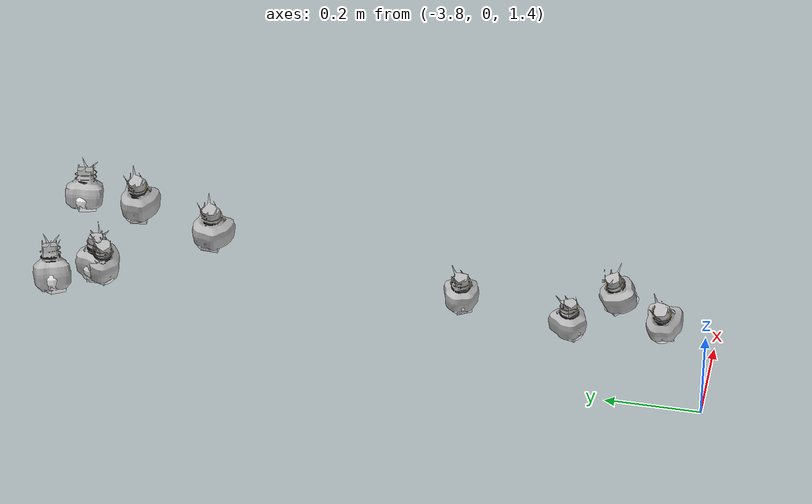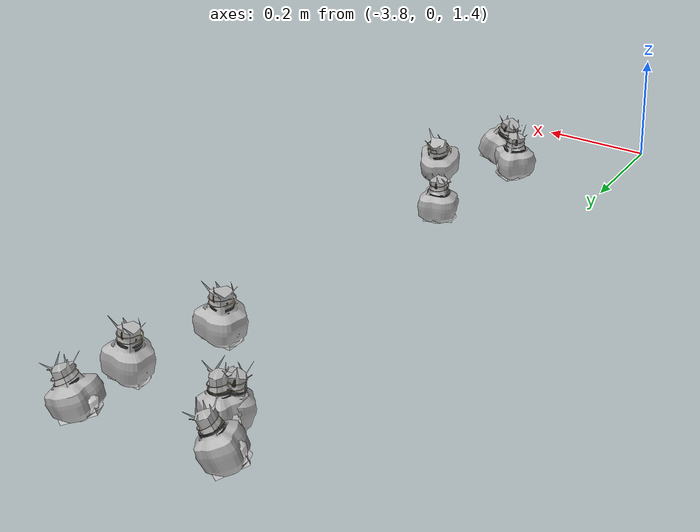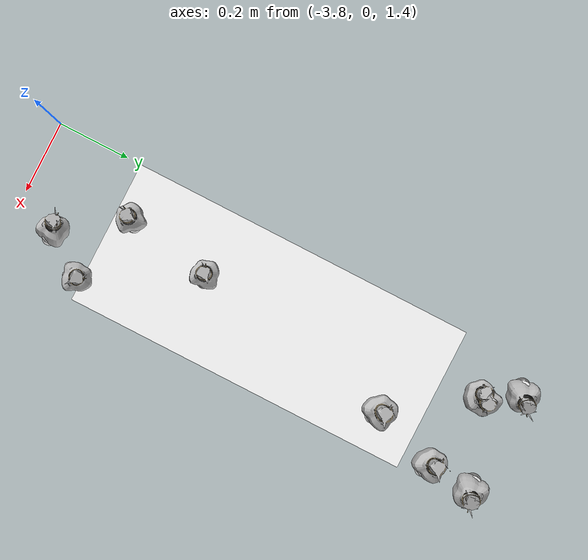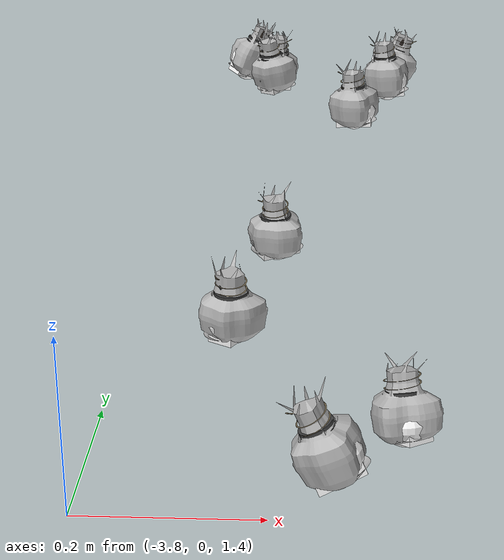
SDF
<sdf version="1.11">
 <world name="peach_orchard">
  <model name="ground">
   <static>true</static>
   <link name="link">
    <visual name="soil">
     <geometry><plane><normal>0 0 1</normal><size>32 22</size></plane></geometry>
     <material>
      <ambient>1 1 1 1</ambient>
      <diffuse>1 1 1 1</diffuse>
      <specular>0.1 0.1 0.1 1</specular>
      <pbr>
       <metal>
        <albedo_map>textures/soil_albedo.png</albedo_map>
        <normal_map type="tangent">textures/soil_normal.png</normal_map>
        <roughness>0.95</roughness>
        <metalness>0</metalness>
       </metal>
      </pbr>
     </material>
    </visual>
    <collision name="c_soil">
     <geometry><plane><normal>0 0 1</normal><size>32 22</size></plane></geometry>
    </collision>
   </link>
  </model>
  <model name="peach_tree_r1_t3_04">
   <pose>-3.65967 0.298951 1.44628 0 0.00556557 -2.42934</pose>
   <static>true</static>
   <link name="bag">
    <visual name="bag_mesh">
     <pose>0 0 0.0416671 0 0 -0</pose>
     <geometry>
      <mesh><uri>model://peach_sim/meshes/bagged_peach.glb</uri><scale>0.922563 1.07125 0.946979</scale></mesh>
     </geometry>
    </visual>
    <visual name="body">
     <pose>0 0 0.0236671 0 0 0</pose>
     <geometry><ellipsoid><radii>0.0345961 0.0278525 0.0255605</radii></ellipsoid></geometry>
     <material>
      <ambient>1 1 1 1</ambient>
      <diffuse>1 1 1 1</diffuse>
      <specular>0.1 0.1 0.1 1</specular>
      <pbr>
       <metal>
        <albedo_map>textures/paper_bag_albedo.png</albedo_map>
        <normal_map type="tangent">textures/paper_bag_normal.png</normal_map>
        <roughness>0.72</roughness>
        <metalness>0</metalness>
       </metal>
      </pbr>
     </material>
    </visual>
    <visual name="bottom_fold">
     <pose>0 0 0.012 0 0 0.35</pose>
     <geometry><box><size>0.053624 0.0320303 0.022</size></box></geometry>
     <material>
      <ambient>1 1 1 1</ambient>
      <diffuse>1 1 1 1</diffuse>
      <specular>0.1 0.1 0.1 1</specular>
      <pbr>
       <metal>
        <albedo_map>textures/paper_bag_albedo.png</albedo_map>
        <normal_map type="tangent">textures/paper_bag_normal.png</normal_map>
        <roughness>0.8</roughness>
        <metalness>0</metalness>
       </metal>
      </pbr>
     </material>
    </visual>
    <visual name="fruit">
     <pose>0 0 0.0206718 0 0 0</pose>
     <geometry><sphere><radius>0.0277386</radius></sphere></geometry>
     <material>
      <ambient>1 1 1 1</ambient>
      <diffuse>1 1 1 1</diffuse>
      <specular>0.1 0.1 0.1 1</specular>
      <pbr>
       <metal>
        <albedo_map>textures/fruit_skin_albedo.png</albedo_map>
        <normal_map type="tangent">textures/fruit_skin_normal.png</normal_map>
        <roughness>0.55</roughness>
        <metalness>0</metalness>
       </metal>
      </pbr>
     </material>
    </visual>
    <visual name="neck">
     <pose>0 0 0.0563342 0 0 0</pose>
     <geometry><cylinder><radius>0.013</radius><length>0.018</length></cylinder></geometry>
     <material>
      <ambient>1 1 1 1</ambient>
      <diffuse>1 1 1 1</diffuse>
      <specular>0.1 0.1 0.1 1</specular>
      <pbr>
       <metal>
        <albedo_map>textures/paper_bag_albedo.png</albedo_map>
        <normal_map type="tangent">textures/paper_bag_normal.png</normal_map>
        <roughness>0.75</roughness>
        <metalness>0</metalness>
       </metal>
      </pbr>
     </material>
    </visual>
    <visual name="gather">
     <pose>0 0 0.0373342 0 0 0</pose>
     <geometry><cylinder><radius>0.019</radius><length>0.02</length></cylinder></geometry>
     <material>
      <ambient>1 1 1 1</ambient>
      <diffuse>1 1 1 1</diffuse>
      <specular>0.1 0.1 0.1 1</specular>
      <pbr>
       <metal>
        <albedo_map>textures/paper_bag_albedo.png</albedo_map>
        <normal_map type="tangent">textures/paper_bag_normal.png</normal_map>
        <roughness>0.8</roughness>
        <metalness>0</metalness>
       </metal>
      </pbr>
     </material>
    </visual>
    <visual name="inner_paper">
     <pose>0 0 0.0613342 0 0 0</pose>
     <geometry><cylinder><radius>0.01</radius><length>0.008</length></cylinder></geometry>
     <material>
      <ambient>0.180392 0.14902 0.133333 1</ambient>
      <diffuse>0.180392 0.14902 0.133333 1</diffuse>
      <specular>0.1 0.1 0.1 1</specular>
     </material>
    </visual>
    <visual name="wire_0">
     <pose>0 0 0.0513342 0 0 0</pose>
     <geometry><cylinder><radius>0.0205</radius><length>0.0035</length></cylinder></geometry>
     <material>
      <ambient>0.25 0.25 0.25 1</ambient>
      <diffuse>0.25 0.25 0.25 1</diffuse>
      <specular>0.1 0.1 0.1 1</specular>
     </material>
    </visual>
    <visual name="wire_1">
     <pose>0 0 0.0583342 0 0 0</pose>
     <geometry><cylinder><radius>0.0205</radius><length>0.0035</length></cylinder></geometry>
     <material>
      <ambient>0.25 0.25 0.25 1</ambient>
      <diffuse>0.25 0.25 0.25 1</diffuse>
      <specular>0.1 0.1 0.1 1</specular>
     </material>
    </visual>
    <visual name="wire_tail">
     <pose>0.01 0 0.0593342 0 0.521618 0</pose>
     <geometry><cylinder><radius>0.0012</radius><length>0.026</length></cylinder></geometry>
     <material>
      <ambient>0.25 0.25 0.25 1</ambient>
      <diffuse>0.25 0.25 0.25 1</diffuse>
      <specular>0.1 0.1 0.1 1</specular>
     </material>
    </visual>
    <collision name="c_body">
     <pose>0 0 0.0236671 0 0 0</pose>
     <geometry><cylinder><radius>0.0345961</radius><length>0.0473342</length></cylinder></geometry>
    </collision>
   </link>
  </model>
  <model name="peach_tree_r1_t3_05">
   <pose>-3.61823 0.532756 1.45 0 0.0347315 -3.0111</pose>
   <static>true</static>
   <link name="bag">
    <visual name="bag_mesh">
     <pose>0 0 0.0400003 0 0 -0</pose>
     <geometry>
      <mesh><uri>model://peach_sim/meshes/bagged_peach.glb</uri><scale>0.907463 1.06817 0.909097</scale></mesh>
     </geometry>
    </visual>
    <visual name="body">
     <pose>0 0 0.0220003 0 0 0</pose>
     <geometry><ellipsoid><radii>0.0340299 0.0277723 0.0237603</radii></ellipsoid></geometry>
     <material>
      <ambient>1 1 1 1</ambient>
      <diffuse>1 1 1 1</diffuse>
      <specular>0.1 0.1 0.1 1</specular>
      <pbr>
       <metal>
        <albedo_map>textures/paper_bag_albedo.png</albedo_map>
        <normal_map type="tangent">textures/paper_bag_normal.png</normal_map>
        <roughness>0.72</roughness>
        <metalness>0</metalness>
       </metal>
      </pbr>
     </material>
    </visual>
    <visual name="bottom_fold">
     <pose>0 0 0.012 0 0 0.35</pose>
     <geometry><box><size>0.0527463 0.0319382 0.022</size></box></geometry>
     <material>
      <ambient>1 1 1 1</ambient>
      <diffuse>1 1 1 1</diffuse>
      <specular>0.1 0.1 0.1 1</specular>
      <pbr>
       <metal>
        <albedo_map>textures/paper_bag_albedo.png</albedo_map>
        <normal_map type="tangent">textures/paper_bag_normal.png</normal_map>
        <roughness>0.8</roughness>
        <metalness>0</metalness>
       </metal>
      </pbr>
     </material>
    </visual>
    <visual name="fruit">
     <pose>0 0 0.0208591 0 0 0</pose>
     <geometry><sphere><radius>0.0279335</radius></sphere></geometry>
     <material>
      <ambient>1 1 1 1</ambient>
      <diffuse>1 1 1 1</diffuse>
      <specular>0.1 0.1 0.1 1</specular>
      <pbr>
       <metal>
        <albedo_map>textures/fruit_skin_albedo.png</albedo_map>
        <normal_map type="tangent">textures/fruit_skin_normal.png</normal_map>
        <roughness>0.55</roughness>
        <metalness>0</metalness>
       </metal>
      </pbr>
     </material>
    </visual>
    <visual name="neck">
     <pose>0 0 0.0530005 0 0 0</pose>
     <geometry><cylinder><radius>0.013</radius><length>0.018</length></cylinder></geometry>
     <material>
      <ambient>1 1 1 1</ambient>
      <diffuse>1 1 1 1</diffuse>
      <specular>0.1 0.1 0.1 1</specular>
      <pbr>
       <metal>
        <albedo_map>textures/paper_bag_albedo.png</albedo_map>
        <normal_map type="tangent">textures/paper_bag_normal.png</normal_map>
        <roughness>0.75</roughness>
        <metalness>0</metalness>
       </metal>
      </pbr>
     </material>
    </visual>
    <visual name="gather">
     <pose>0 0 0.0340005 0 0 0</pose>
     <geometry><cylinder><radius>0.019</radius><length>0.02</length></cylinder></geometry>
     <material>
      <ambient>1 1 1 1</ambient>
      <diffuse>1 1 1 1</diffuse>
      <specular>0.1 0.1 0.1 1</specular>
      <pbr>
       <metal>
        <albedo_map>textures/paper_bag_albedo.png</albedo_map>
        <normal_map type="tangent">textures/paper_bag_normal.png</normal_map>
        <roughness>0.8</roughness>
        <metalness>0</metalness>
       </metal>
      </pbr>
     </material>
    </visual>
    <visual name="inner_paper">
     <pose>0 0 0.0580005 0 0 0</pose>
     <geometry><cylinder><radius>0.01</radius><length>0.008</length></cylinder></geometry>
     <material>
      <ambient>0.180392 0.14902 0.133333 1</ambient>
      <diffuse>0.180392 0.14902 0.133333 1</diffuse>
      <specular>0.1 0.1 0.1 1</specular>
     </material>
    </visual>
    <visual name="wire_0">
     <pose>0 0 0.0480005 0 0 0</pose>
     <geometry><cylinder><radius>0.0205</radius><length>0.0035</length></cylinder></geometry>
     <material>
      <ambient>0.25 0.25 0.25 1</ambient>
      <diffuse>0.25 0.25 0.25 1</diffuse>
      <specular>0.1 0.1 0.1 1</specular>
     </material>
    </visual>
    <visual name="wire_1">
     <pose>0 0 0.0550005 0 0 0</pose>
     <geometry><cylinder><radius>0.0205</radius><length>0.0035</length></cylinder></geometry>
     <material>
      <ambient>0.25 0.25 0.25 1</ambient>
      <diffuse>0.25 0.25 0.25 1</diffuse>
      <specular>0.1 0.1 0.1 1</specular>
     </material>
    </visual>
    <visual name="wire_tail">
     <pose>0.01 0 0.0560005 0 0.521618 0</pose>
     <geometry><cylinder><radius>0.0012</radius><length>0.026</length></cylinder></geometry>
     <material>
      <ambient>0.25 0.25 0.25 1</ambient>
      <diffuse>0.25 0.25 0.25 1</diffuse>
      <specular>0.1 0.1 0.1 1</specular>
     </material>
    </visual>
    <collision name="c_body">
     <pose>0 0 0.0220003 0 0 0</pose>
     <geometry><cylinder><radius>0.0340299</radius><length>0.0440005</length></cylinder></geometry>
    </collision>
   </link>
  </model>
  <model name="peach_tree_r1_t3_07">
   <pose>-3.52723 0.112468 1.37372 0 0.419822 2.98983</pose>
   <static>true</static>
   <link name="bag">
    <visual name="bag_mesh">
     <pose>0 0 0.0475105 0 0 0</pose>
     <geometry>
      <mesh><uri>model://peach_sim/meshes/bagged_peach.glb</uri><scale>0.984001 1.12536 1.07979</scale></mesh>
     </geometry>
    </visual>
    <visual name="body">
     <pose>0 0 0.0295105 0 0 0</pose>
     <geometry><ellipsoid><radii>0.0369 0.0292594 0.0318714</radii></ellipsoid></geometry>
     <material>
      <ambient>1 1 1 1</ambient>
      <diffuse>1 1 1 1</diffuse>
      <specular>0.1 0.1 0.1 1</specular>
      <pbr>
       <metal>
        <albedo_map>textures/paper_bag_albedo.png</albedo_map>
        <normal_map type="tangent">textures/paper_bag_normal.png</normal_map>
        <roughness>0.72</roughness>
        <metalness>0</metalness>
       </metal>
      </pbr>
     </material>
    </visual>
    <visual name="bottom_fold">
     <pose>0 0 0.012 0 0 0.35</pose>
     <geometry><box><size>0.0571951 0.0336483 0.022</size></box></geometry>
     <material>
      <ambient>1 1 1 1</ambient>
      <diffuse>1 1 1 1</diffuse>
      <specular>0.1 0.1 0.1 1</specular>
      <pbr>
       <metal>
        <albedo_map>textures/paper_bag_albedo.png</albedo_map>
        <normal_map type="tangent">textures/paper_bag_normal.png</normal_map>
        <roughness>0.8</roughness>
        <metalness>0</metalness>
       </metal>
      </pbr>
     </material>
    </visual>
    <visual name="fruit">
     <pose>0 0 0.0217443 0 0 0</pose>
     <geometry><sphere><radius>0.0288541</radius></sphere></geometry>
     <material>
      <ambient>1 1 1 1</ambient>
      <diffuse>1 1 1 1</diffuse>
      <specular>0.1 0.1 0.1 1</specular>
      <pbr>
       <metal>
        <albedo_map>textures/fruit_skin_albedo.png</albedo_map>
        <normal_map type="tangent">textures/fruit_skin_normal.png</normal_map>
        <roughness>0.55</roughness>
        <metalness>0</metalness>
       </metal>
      </pbr>
     </material>
    </visual>
    <visual name="neck">
     <pose>0 0 0.0680211 0 0 0</pose>
     <geometry><cylinder><radius>0.013</radius><length>0.018</length></cylinder></geometry>
     <material>
      <ambient>1 1 1 1</ambient>
      <diffuse>1 1 1 1</diffuse>
      <specular>0.1 0.1 0.1 1</specular>
      <pbr>
       <metal>
        <albedo_map>textures/paper_bag_albedo.png</albedo_map>
        <normal_map type="tangent">textures/paper_bag_normal.png</normal_map>
        <roughness>0.75</roughness>
        <metalness>0</metalness>
       </metal>
      </pbr>
     </material>
    </visual>
    <visual name="gather">
     <pose>0 0 0.0490211 0 0 0</pose>
     <geometry><cylinder><radius>0.019</radius><length>0.02</length></cylinder></geometry>
     <material>
      <ambient>1 1 1 1</ambient>
      <diffuse>1 1 1 1</diffuse>
      <specular>0.1 0.1 0.1 1</specular>
      <pbr>
       <metal>
        <albedo_map>textures/paper_bag_albedo.png</albedo_map>
        <normal_map type="tangent">textures/paper_bag_normal.png</normal_map>
        <roughness>0.8</roughness>
        <metalness>0</metalness>
       </metal>
      </pbr>
     </material>
    </visual>
    <visual name="inner_paper">
     <pose>0 0 0.0730211 0 0 0</pose>
     <geometry><cylinder><radius>0.01</radius><length>0.008</length></cylinder></geometry>
     <material>
      <ambient>0.180392 0.14902 0.133333 1</ambient>
      <diffuse>0.180392 0.14902 0.133333 1</diffuse>
      <specular>0.1 0.1 0.1 1</specular>
     </material>
    </visual>
    <visual name="wire_0">
     <pose>0 0 0.0630211 0 0 0</pose>
     <geometry><cylinder><radius>0.0205</radius><length>0.0035</length></cylinder></geometry>
     <material>
      <ambient>0.25 0.25 0.25 1</ambient>
      <diffuse>0.25 0.25 0.25 1</diffuse>
      <specular>0.1 0.1 0.1 1</specular>
     </material>
    </visual>
    <visual name="wire_1">
     <pose>0 0 0.0700211 0 0 0</pose>
     <geometry><cylinder><radius>0.0205</radius><length>0.0035</length></cylinder></geometry>
     <material>
      <ambient>0.25 0.25 0.25 1</ambient>
      <diffuse>0.25 0.25 0.25 1</diffuse>
      <specular>0.1 0.1 0.1 1</specular>
     </material>
    </visual>
    <visual name="wire_tail">
     <pose>0.01 0 0.0710211 0 0.521618 0</pose>
     <geometry><cylinder><radius>0.0012</radius><length>0.026</length></cylinder></geometry>
     <material>
      <ambient>0.25 0.25 0.25 1</ambient>
      <diffuse>0.25 0.25 0.25 1</diffuse>
      <specular>0.1 0.1 0.1 1</specular>
     </material>
    </visual>
    <collision name="c_body">
     <pose>0 0 0.0295105 0 0 0</pose>
     <geometry><cylinder><radius>0.0369</radius><length>0.0590211</length></cylinder></geometry>
    </collision>
   </link>
  </model>
  <model name="peach_tree_r1_t3_08">
   <pose>-3.45392 0.212947 1.36133 0 0.279681 1.85846</pose>
   <static>true</static>
   <link name="bag">
    <visual name="bag_mesh">
     <pose>0 0 0.0415146 0 0 0</pose>
     <geometry>
      <mesh><uri>model://peach_sim/meshes/bagged_peach.glb</uri><scale>0.979915 1.15327 0.943514</scale></mesh>
     </geometry>
    </visual>
    <visual name="body">
     <pose>0 0 0.0235146 0 0 0</pose>
     <geometry><ellipsoid><radii>0.0367468 0.029985 0.0253958</radii></ellipsoid></geometry>
     <material>
      <ambient>1 1 1 1</ambient>
      <diffuse>1 1 1 1</diffuse>
      <specular>0.1 0.1 0.1 1</specular>
      <pbr>
       <metal>
        <albedo_map>textures/paper_bag_albedo.png</albedo_map>
        <normal_map type="tangent">textures/paper_bag_normal.png</normal_map>
        <roughness>0.72</roughness>
        <metalness>0</metalness>
       </metal>
      </pbr>
     </material>
    </visual>
    <visual name="bottom_fold">
     <pose>0 0 0.012 0 0 0.35</pose>
     <geometry><box><size>0.0569576 0.0344827 0.022</size></box></geometry>
     <material>
      <ambient>1 1 1 1</ambient>
      <diffuse>1 1 1 1</diffuse>
      <specular>0.1 0.1 0.1 1</specular>
      <pbr>
       <metal>
        <albedo_map>textures/paper_bag_albedo.png</albedo_map>
        <normal_map type="tangent">textures/paper_bag_normal.png</normal_map>
        <roughness>0.8</roughness>
        <metalness>0</metalness>
       </metal>
      </pbr>
     </material>
    </visual>
    <visual name="fruit">
     <pose>0 0 0.0202301 0 0 0</pose>
     <geometry><sphere><radius>0.0272793</radius></sphere></geometry>
     <material>
      <ambient>1 1 1 1</ambient>
      <diffuse>1 1 1 1</diffuse>
      <specular>0.1 0.1 0.1 1</specular>
      <pbr>
       <metal>
        <albedo_map>textures/fruit_skin_albedo.png</albedo_map>
        <normal_map type="tangent">textures/fruit_skin_normal.png</normal_map>
        <roughness>0.55</roughness>
        <metalness>0</metalness>
       </metal>
      </pbr>
     </material>
    </visual>
    <visual name="neck">
     <pose>0 0 0.0560292 0 0 0</pose>
     <geometry><cylinder><radius>0.013</radius><length>0.018</length></cylinder></geometry>
     <material>
      <ambient>1 1 1 1</ambient>
      <diffuse>1 1 1 1</diffuse>
      <specular>0.1 0.1 0.1 1</specular>
      <pbr>
       <metal>
        <albedo_map>textures/paper_bag_albedo.png</albedo_map>
        <normal_map type="tangent">textures/paper_bag_normal.png</normal_map>
        <roughness>0.75</roughness>
        <metalness>0</metalness>
       </metal>
      </pbr>
     </material>
    </visual>
    <visual name="gather">
     <pose>0 0 0.0370292 0 0 0</pose>
     <geometry><cylinder><radius>0.019</radius><length>0.02</length></cylinder></geometry>
     <material>
      <ambient>1 1 1 1</ambient>
      <diffuse>1 1 1 1</diffuse>
      <specular>0.1 0.1 0.1 1</specular>
      <pbr>
       <metal>
        <albedo_map>textures/paper_bag_albedo.png</albedo_map>
        <normal_map type="tangent">textures/paper_bag_normal.png</normal_map>
        <roughness>0.8</roughness>
        <metalness>0</metalness>
       </metal>
      </pbr>
     </material>
    </visual>
    <visual name="inner_paper">
     <pose>0 0 0.0610292 0 0 0</pose>
     <geometry><cylinder><radius>0.01</radius><length>0.008</length></cylinder></geometry>
     <material>
      <ambient>0.180392 0.14902 0.133333 1</ambient>
      <diffuse>0.180392 0.14902 0.133333 1</diffuse>
      <specular>0.1 0.1 0.1 1</specular>
     </material>
    </visual>
    <visual name="wire_0">
     <pose>0 0 0.0510292 0 0 0</pose>
     <geometry><cylinder><radius>0.0205</radius><length>0.0035</length></cylinder></geometry>
     <material>
      <ambient>0.25 0.25 0.25 1</ambient>
      <diffuse>0.25 0.25 0.25 1</diffuse>
      <specular>0.1 0.1 0.1 1</specular>
     </material>
    </visual>
    <visual name="wire_1">
     <pose>0 0 0.0580292 0 0 0</pose>
     <geometry><cylinder><radius>0.0205</radius><length>0.0035</length></cylinder></geometry>
     <material>
      <ambient>0.25 0.25 0.25 1</ambient>
      <diffuse>0.25 0.25 0.25 1</diffuse>
      <specular>0.1 0.1 0.1 1</specular>
     </material>
    </visual>
    <visual name="wire_tail">
     <pose>0.01 0 0.0590292 0 0.521618 0</pose>
     <geometry><cylinder><radius>0.0012</radius><length>0.026</length></cylinder></geometry>
     <material>
      <ambient>0.25 0.25 0.25 1</ambient>
      <diffuse>0.25 0.25 0.25 1</diffuse>
      <specular>0.1 0.1 0.1 1</specular>
     </material>
    </visual>
    <collision name="c_body">
     <pose>0 0 0.0235146 0 0 0</pose>
     <geometry><cylinder><radius>0.0367468</radius><length>0.0470292</length></cylinder></geometry>
    </collision>
   </link>
  </model>
  <model name="peach_tree_r1_t4_02">
   <pose>-3.72819 1.37983 1.45 0 0.4128 0.328277</pose>
   <static>true</static>
   <link name="bag">
    <visual name="bag_mesh">
     <pose>0 0 0.0495744 0 0 0</pose>
     <geometry>
      <mesh><uri>model://peach_sim/meshes/bagged_peach.glb</uri><scale>0.981769 1.14066 1.12669</scale></mesh>
     </geometry>
    </visual>
    <visual name="body">
     <pose>0 0 0.0315744 0 0 0</pose>
     <geometry><ellipsoid><radii>0.0368163 0.0296571 0.0341004</radii></ellipsoid></geometry>
     <material>
      <ambient>1 1 1 1</ambient>
      <diffuse>1 1 1 1</diffuse>
      <specular>0.1 0.1 0.1 1</specular>
      <pbr>
       <metal>
        <albedo_map>textures/paper_bag_albedo.png</albedo_map>
        <normal_map type="tangent">textures/paper_bag_normal.png</normal_map>
        <roughness>0.72</roughness>
        <metalness>0</metalness>
       </metal>
      </pbr>
     </material>
    </visual>
    <visual name="bottom_fold">
     <pose>0 0 0.012 0 0 0.35</pose>
     <geometry><box><size>0.0570653 0.0341056 0.022</size></box></geometry>
     <material>
      <ambient>1 1 1 1</ambient>
      <diffuse>1 1 1 1</diffuse>
      <specular>0.1 0.1 0.1 1</specular>
      <pbr>
       <metal>
        <albedo_map>textures/paper_bag_albedo.png</albedo_map>
        <normal_map type="tangent">textures/paper_bag_normal.png</normal_map>
        <roughness>0.8</roughness>
        <metalness>0</metalness>
       </metal>
      </pbr>
     </material>
    </visual>
    <visual name="fruit">
     <pose>0 0 0.0177051 0 0 0</pose>
     <geometry><sphere><radius>0.0246533</radius></sphere></geometry>
     <material>
      <ambient>1 1 1 1</ambient>
      <diffuse>1 1 1 1</diffuse>
      <specular>0.1 0.1 0.1 1</specular>
      <pbr>
       <metal>
        <albedo_map>textures/fruit_skin_albedo.png</albedo_map>
        <normal_map type="tangent">textures/fruit_skin_normal.png</normal_map>
        <roughness>0.55</roughness>
        <metalness>0</metalness>
       </metal>
      </pbr>
     </material>
    </visual>
    <visual name="neck">
     <pose>0 0 0.0721488 0 0 0</pose>
     <geometry><cylinder><radius>0.013</radius><length>0.018</length></cylinder></geometry>
     <material>
      <ambient>1 1 1 1</ambient>
      <diffuse>1 1 1 1</diffuse>
      <specular>0.1 0.1 0.1 1</specular>
      <pbr>
       <metal>
        <albedo_map>textures/paper_bag_albedo.png</albedo_map>
        <normal_map type="tangent">textures/paper_bag_normal.png</normal_map>
        <roughness>0.75</roughness>
        <metalness>0</metalness>
       </metal>
      </pbr>
     </material>
    </visual>
    <visual name="gather">
     <pose>0 0 0.0531488 0 0 0</pose>
     <geometry><cylinder><radius>0.019</radius><length>0.02</length></cylinder></geometry>
     <material>
      <ambient>1 1 1 1</ambient>
      <diffuse>1 1 1 1</diffuse>
      <specular>0.1 0.1 0.1 1</specular>
      <pbr>
       <metal>
        <albedo_map>textures/paper_bag_albedo.png</albedo_map>
        <normal_map type="tangent">textures/paper_bag_normal.png</normal_map>
        <roughness>0.8</roughness>
        <metalness>0</metalness>
       </metal>
      </pbr>
     </material>
    </visual>
    <visual name="inner_paper">
     <pose>0 0 0.0771488 0 0 0</pose>
     <geometry><cylinder><radius>0.01</radius><length>0.008</length></cylinder></geometry>
     <material>
      <ambient>0.180392 0.14902 0.133333 1</ambient>
      <diffuse>0.180392 0.14902 0.133333 1</diffuse>
      <specular>0.1 0.1 0.1 1</specular>
     </material>
    </visual>
    <visual name="wire_0">
     <pose>0 0 0.0671488 0 0 0</pose>
     <geometry><cylinder><radius>0.0205</radius><length>0.0035</length></cylinder></geometry>
     <material>
      <ambient>0.25 0.25 0.25 1</ambient>
      <diffuse>0.25 0.25 0.25 1</diffuse>
      <specular>0.1 0.1 0.1 1</specular>
     </material>
    </visual>
    <visual name="wire_1">
     <pose>0 0 0.0741488 0 0 0</pose>
     <geometry><cylinder><radius>0.0205</radius><length>0.0035</length></cylinder></geometry>
     <material>
      <ambient>0.25 0.25 0.25 1</ambient>
      <diffuse>0.25 0.25 0.25 1</diffuse>
      <specular>0.1 0.1 0.1 1</specular>
     </material>
    </visual>
    <visual name="wire_tail">
     <pose>0.01 0 0.0751488 0 0.521618 0</pose>
     <geometry><cylinder><radius>0.0012</radius><length>0.026</length></cylinder></geometry>
     <material>
      <ambient>0.25 0.25 0.25 1</ambient>
      <diffuse>0.25 0.25 0.25 1</diffuse>
      <specular>0.1 0.1 0.1 1</specular>
     </material>
    </visual>
    <collision name="c_body">
     <pose>0 0 0.0315744 0 0 0</pose>
     <geometry><cylinder><radius>0.0368163</radius><length>0.0631488</length></cylinder></geometry>
    </collision>
   </link>
  </model>
  <model name="peach_tree_r1_t4_03">
   <pose>-3.66264 1.30208 1.45 0 0.0798727 -0.298955</pose>
   <static>true</static>
   <link name="bag">
    <visual name="bag_mesh">
     <pose>0 0 0.0489154 0 0 -0</pose>
     <geometry>
      <mesh><uri>model://peach_sim/meshes/bagged_peach.glb</uri><scale>1.00018 1.11818 1.11171</scale></mesh>
     </geometry>
    </visual>
    <visual name="body">
     <pose>0 0 0.0309154 0 0 0</pose>
     <geometry><ellipsoid><radii>0.0375069 0.0290727 0.0333887</radii></ellipsoid></geometry>
     <material>
      <ambient>1 1 1 1</ambient>
      <diffuse>1 1 1 1</diffuse>
      <specular>0.1 0.1 0.1 1</specular>
      <pbr>
       <metal>
        <albedo_map>textures/paper_bag_albedo.png</albedo_map>
        <normal_map type="tangent">textures/paper_bag_normal.png</normal_map>
        <roughness>0.72</roughness>
        <metalness>0</metalness>
       </metal>
      </pbr>
     </material>
    </visual>
    <visual name="bottom_fold">
     <pose>0 0 0.012 0 0 0.35</pose>
     <geometry><box><size>0.0581357 0.0334336 0.022</size></box></geometry>
     <material>
      <ambient>1 1 1 1</ambient>
      <diffuse>1 1 1 1</diffuse>
      <specular>0.1 0.1 0.1 1</specular>
      <pbr>
       <metal>
        <albedo_map>textures/paper_bag_albedo.png</albedo_map>
        <normal_map type="tangent">textures/paper_bag_normal.png</normal_map>
        <roughness>0.8</roughness>
        <metalness>0</metalness>
       </metal>
      </pbr>
     </material>
    </visual>
    <visual name="fruit">
     <pose>0 0 0.02186 0 0 0</pose>
     <geometry><sphere><radius>0.0289744</radius></sphere></geometry>
     <material>
      <ambient>1 1 1 1</ambient>
      <diffuse>1 1 1 1</diffuse>
      <specular>0.1 0.1 0.1 1</specular>
      <pbr>
       <metal>
        <albedo_map>textures/fruit_skin_albedo.png</albedo_map>
        <normal_map type="tangent">textures/fruit_skin_normal.png</normal_map>
        <roughness>0.55</roughness>
        <metalness>0</metalness>
       </metal>
      </pbr>
     </material>
    </visual>
    <visual name="neck">
     <pose>0 0 0.0708309 0 0 0</pose>
     <geometry><cylinder><radius>0.013</radius><length>0.018</length></cylinder></geometry>
     <material>
      <ambient>1 1 1 1</ambient>
      <diffuse>1 1 1 1</diffuse>
      <specular>0.1 0.1 0.1 1</specular>
      <pbr>
       <metal>
        <albedo_map>textures/paper_bag_albedo.png</albedo_map>
        <normal_map type="tangent">textures/paper_bag_normal.png</normal_map>
        <roughness>0.75</roughness>
        <metalness>0</metalness>
       </metal>
      </pbr>
     </material>
    </visual>
    <visual name="gather">
     <pose>0 0 0.0518309 0 0 0</pose>
     <geometry><cylinder><radius>0.019</radius><length>0.02</length></cylinder></geometry>
     <material>
      <ambient>1 1 1 1</ambient>
      <diffuse>1 1 1 1</diffuse>
      <specular>0.1 0.1 0.1 1</specular>
      <pbr>
       <metal>
        <albedo_map>textures/paper_bag_albedo.png</albedo_map>
        <normal_map type="tangent">textures/paper_bag_normal.png</normal_map>
        <roughness>0.8</roughness>
        <metalness>0</metalness>
       </metal>
      </pbr>
     </material>
    </visual>
    <visual name="inner_paper">
     <pose>0 0 0.0758309 0 0 0</pose>
     <geometry><cylinder><radius>0.01</radius><length>0.008</length></cylinder></geometry>
     <material>
      <ambient>0.180392 0.14902 0.133333 1</ambient>
      <diffuse>0.180392 0.14902 0.133333 1</diffuse>
      <specular>0.1 0.1 0.1 1</specular>
     </material>
    </visual>
    <visual name="wire_0">
     <pose>0 0 0.0658309 0 0 0</pose>
     <geometry><cylinder><radius>0.0205</radius><length>0.0035</length></cylinder></geometry>
     <material>
      <ambient>0.25 0.25 0.25 1</ambient>
      <diffuse>0.25 0.25 0.25 1</diffuse>
      <specular>0.1 0.1 0.1 1</specular>
     </material>
    </visual>
    <visual name="wire_1">
     <pose>0 0 0.0728309 0 0 0</pose>
     <geometry><cylinder><radius>0.0205</radius><length>0.0035</length></cylinder></geometry>
     <material>
      <ambient>0.25 0.25 0.25 1</ambient>
      <diffuse>0.25 0.25 0.25 1</diffuse>
      <specular>0.1 0.1 0.1 1</specular>
     </material>
    </visual>
    <visual name="wire_tail">
     <pose>0.01 0 0.0738309 0 0.521618 0</pose>
     <geometry><cylinder><radius>0.0012</radius><length>0.026</length></cylinder></geometry>
     <material>
      <ambient>0.25 0.25 0.25 1</ambient>
      <diffuse>0.25 0.25 0.25 1</diffuse>
      <specular>0.1 0.1 0.1 1</specular>
     </material>
    </visual>
    <collision name="c_body">
     <pose>0 0 0.0309154 0 0 0</pose>
     <geometry><cylinder><radius>0.0375069</radius><length>0.0618309</length></cylinder></geometry>
    </collision>
   </link>
  </model>
  <model name="peach_tree_r1_t4_04">
   <pose>-3.6584 1.2923 1.45 0 0.196876 -2.58508</pose>
   <static>true</static>
   <link name="bag">
    <visual name="bag_mesh">
     <pose>0 0 0.0484827 0 0 -0</pose>
     <geometry>
      <mesh><uri>model://peach_sim/meshes/bagged_peach.glb</uri><scale>0.966531 1.1121 1.10188</scale></mesh>
     </geometry>
    </visual>
    <visual name="body">
     <pose>0 0 0.0304827 0 0 0</pose>
     <geometry><ellipsoid><radii>0.0362449 0.0289146 0.0329213</radii></ellipsoid></geometry>
     <material>
      <ambient>1 1 1 1</ambient>
      <diffuse>1 1 1 1</diffuse>
      <specular>0.1 0.1 0.1 1</specular>
      <pbr>
       <metal>
        <albedo_map>textures/paper_bag_albedo.png</albedo_map>
        <normal_map type="tangent">textures/paper_bag_normal.png</normal_map>
        <roughness>0.72</roughness>
        <metalness>0</metalness>
       </metal>
      </pbr>
     </material>
    </visual>
    <visual name="bottom_fold">
     <pose>0 0 0.012 0 0 0.35</pose>
     <geometry><box><size>0.0561796 0.0332517 0.022</size></box></geometry>
     <material>
      <ambient>1 1 1 1</ambient>
      <diffuse>1 1 1 1</diffuse>
      <specular>0.1 0.1 0.1 1</specular>
      <pbr>
       <metal>
        <albedo_map>textures/paper_bag_albedo.png</albedo_map>
        <normal_map type="tangent">textures/paper_bag_normal.png</normal_map>
        <roughness>0.8</roughness>
        <metalness>0</metalness>
       </metal>
      </pbr>
     </material>
    </visual>
    <visual name="fruit">
     <pose>0 0 0.0217583 0 0 0</pose>
     <geometry><sphere><radius>0.0288686</radius></sphere></geometry>
     <material>
      <ambient>1 1 1 1</ambient>
      <diffuse>1 1 1 1</diffuse>
      <specular>0.1 0.1 0.1 1</specular>
      <pbr>
       <metal>
        <albedo_map>textures/fruit_skin_albedo.png</albedo_map>
        <normal_map type="tangent">textures/fruit_skin_normal.png</normal_map>
        <roughness>0.55</roughness>
        <metalness>0</metalness>
       </metal>
      </pbr>
     </material>
    </visual>
    <visual name="neck">
     <pose>0 0 0.0699654 0 0 0</pose>
     <geometry><cylinder><radius>0.013</radius><length>0.018</length></cylinder></geometry>
     <material>
      <ambient>1 1 1 1</ambient>
      <diffuse>1 1 1 1</diffuse>
      <specular>0.1 0.1 0.1 1</specular>
      <pbr>
       <metal>
        <albedo_map>textures/paper_bag_albedo.png</albedo_map>
        <normal_map type="tangent">textures/paper_bag_normal.png</normal_map>
        <roughness>0.75</roughness>
        <metalness>0</metalness>
       </metal>
      </pbr>
     </material>
    </visual>
    <visual name="gather">
     <pose>0 0 0.0509654 0 0 0</pose>
     <geometry><cylinder><radius>0.019</radius><length>0.02</length></cylinder></geometry>
     <material>
      <ambient>1 1 1 1</ambient>
      <diffuse>1 1 1 1</diffuse>
      <specular>0.1 0.1 0.1 1</specular>
      <pbr>
       <metal>
        <albedo_map>textures/paper_bag_albedo.png</albedo_map>
        <normal_map type="tangent">textures/paper_bag_normal.png</normal_map>
        <roughness>0.8</roughness>
        <metalness>0</metalness>
       </metal>
      </pbr>
     </material>
    </visual>
    <visual name="inner_paper">
     <pose>0 0 0.0749654 0 0 0</pose>
     <geometry><cylinder><radius>0.01</radius><length>0.008</length></cylinder></geometry>
     <material>
      <ambient>0.180392 0.14902 0.133333 1</ambient>
      <diffuse>0.180392 0.14902 0.133333 1</diffuse>
      <specular>0.1 0.1 0.1 1</specular>
     </material>
    </visual>
    <visual name="wire_0">
     <pose>0 0 0.0649654 0 0 0</pose>
     <geometry><cylinder><radius>0.0205</radius><length>0.0035</length></cylinder></geometry>
     <material>
      <ambient>0.25 0.25 0.25 1</ambient>
      <diffuse>0.25 0.25 0.25 1</diffuse>
      <specular>0.1 0.1 0.1 1</specular>
     </material>
    </visual>
    <visual name="wire_1">
     <pose>0 0 0.0719654 0 0 0</pose>
     <geometry><cylinder><radius>0.0205</radius><length>0.0035</length></cylinder></geometry>
     <material>
      <ambient>0.25 0.25 0.25 1</ambient>
      <diffuse>0.25 0.25 0.25 1</diffuse>
      <specular>0.1 0.1 0.1 1</specular>
     </material>
    </visual>
    <visual name="wire_tail">
     <pose>0.01 0 0.0729654 0 0.521618 0</pose>
     <geometry><cylinder><radius>0.0012</radius><length>0.026</length></cylinder></geometry>
     <material>
      <ambient>0.25 0.25 0.25 1</ambient>
      <diffuse>0.25 0.25 0.25 1</diffuse>
      <specular>0.1 0.1 0.1 1</specular>
     </material>
    </visual>
    <collision name="c_body">
     <pose>0 0 0.0304827 0 0 0</pose>
     <geometry><cylinder><radius>0.0362449</radius><length>0.0609654</length></cylinder></geometry>
    </collision>
   </link>
  </model>
  <model name="peach_tree_r1_t4_05">
   <pose>-3.51277 1.08358 1.45 0 0.0618104 2.70431</pose>
   <static>true</static>
   <link name="bag">
    <visual name="bag_mesh">
     <pose>0 0 0.0468345 0 0 0</pose>
     <geometry>
      <mesh><uri>model://peach_sim/meshes/bagged_peach.glb</uri><scale>1.03334 1.24617 1.06442</scale></mesh>
     </geometry>
    </visual>
    <visual name="body">
     <pose>0 0 0.0288345 0 0 0</pose>
     <geometry><ellipsoid><radii>0.0387502 0.0324005 0.0311413</radii></ellipsoid></geometry>
     <material>
      <ambient>1 1 1 1</ambient>
      <diffuse>1 1 1 1</diffuse>
      <specular>0.1 0.1 0.1 1</specular>
      <pbr>
       <metal>
        <albedo_map>textures/paper_bag_albedo.png</albedo_map>
        <normal_map type="tangent">textures/paper_bag_normal.png</normal_map>
        <roughness>0.72</roughness>
        <metalness>0</metalness>
       </metal>
      </pbr>
     </material>
    </visual>
    <visual name="bottom_fold">
     <pose>0 0 0.012 0 0 0.35</pose>
     <geometry><box><size>0.0600628 0.0372606 0.022</size></box></geometry>
     <material>
      <ambient>1 1 1 1</ambient>
      <diffuse>1 1 1 1</diffuse>
      <specular>0.1 0.1 0.1 1</specular>
      <pbr>
       <metal>
        <albedo_map>textures/paper_bag_albedo.png</albedo_map>
        <normal_map type="tangent">textures/paper_bag_normal.png</normal_map>
        <roughness>0.8</roughness>
        <metalness>0</metalness>
       </metal>
      </pbr>
     </material>
    </visual>
    <visual name="fruit">
     <pose>0 0 0.0170367 0 0 0</pose>
     <geometry><sphere><radius>0.0239582</radius></sphere></geometry>
     <material>
      <ambient>1 1 1 1</ambient>
      <diffuse>1 1 1 1</diffuse>
      <specular>0.1 0.1 0.1 1</specular>
      <pbr>
       <metal>
        <albedo_map>textures/fruit_skin_albedo.png</albedo_map>
        <normal_map type="tangent">textures/fruit_skin_normal.png</normal_map>
        <roughness>0.55</roughness>
        <metalness>0</metalness>
       </metal>
      </pbr>
     </material>
    </visual>
    <visual name="neck">
     <pose>0 0 0.0666691 0 0 0</pose>
     <geometry><cylinder><radius>0.013</radius><length>0.018</length></cylinder></geometry>
     <material>
      <ambient>1 1 1 1</ambient>
      <diffuse>1 1 1 1</diffuse>
      <specular>0.1 0.1 0.1 1</specular>
      <pbr>
       <metal>
        <albedo_map>textures/paper_bag_albedo.png</albedo_map>
        <normal_map type="tangent">textures/paper_bag_normal.png</normal_map>
        <roughness>0.75</roughness>
        <metalness>0</metalness>
       </metal>
      </pbr>
     </material>
    </visual>
    <visual name="gather">
     <pose>0 0 0.0476691 0 0 0</pose>
     <geometry><cylinder><radius>0.019</radius><length>0.02</length></cylinder></geometry>
     <material>
      <ambient>1 1 1 1</ambient>
      <diffuse>1 1 1 1</diffuse>
      <specular>0.1 0.1 0.1 1</specular>
      <pbr>
       <metal>
        <albedo_map>textures/paper_bag_albedo.png</albedo_map>
        <normal_map type="tangent">textures/paper_bag_normal.png</normal_map>
        <roughness>0.8</roughness>
        <metalness>0</metalness>
       </metal>
      </pbr>
     </material>
    </visual>
    <visual name="inner_paper">
     <pose>0 0 0.0716691 0 0 0</pose>
     <geometry><cylinder><radius>0.01</radius><length>0.008</length></cylinder></geometry>
     <material>
      <ambient>0.180392 0.14902 0.133333 1</ambient>
      <diffuse>0.180392 0.14902 0.133333 1</diffuse>
      <specular>0.1 0.1 0.1 1</specular>
     </material>
    </visual>
    <visual name="wire_0">
     <pose>0 0 0.0616691 0 0 0</pose>
     <geometry><cylinder><radius>0.0205</radius><length>0.0035</length></cylinder></geometry>
     <material>
      <ambient>0.25 0.25 0.25 1</ambient>
      <diffuse>0.25 0.25 0.25 1</diffuse>
      <specular>0.1 0.1 0.1 1</specular>
     </material>
    </visual>
    <visual name="wire_1">
     <pose>0 0 0.0686691 0 0 0</pose>
     <geometry><cylinder><radius>0.0205</radius><length>0.0035</length></cylinder></geometry>
     <material>
      <ambient>0.25 0.25 0.25 1</ambient>
      <diffuse>0.25 0.25 0.25 1</diffuse>
      <specular>0.1 0.1 0.1 1</specular>
     </material>
    </visual>
    <visual name="wire_tail">
     <pose>0.01 0 0.0696691 0 0.521618 0</pose>
     <geometry><cylinder><radius>0.0012</radius><length>0.026</length></cylinder></geometry>
     <material>
      <ambient>0.25 0.25 0.25 1</ambient>
      <diffuse>0.25 0.25 0.25 1</diffuse>
      <specular>0.1 0.1 0.1 1</specular>
     </material>
    </visual>
    <collision name="c_body">
     <pose>0 0 0.0288345 0 0 0</pose>
     <geometry><cylinder><radius>0.0387502</radius><length>0.0576691</length></cylinder></geometry>
    </collision>
   </link>
  </model>
  <model name="peach_tree_r1_t4_09">
   <pose>-3.45 1.37791 1.45 0 0.376925 0.0683765</pose>
   <static>true</static>
   <link name="bag">
    <visual name="bag_mesh">
     <pose>0 0 0.0430149 0 0 0</pose>
     <geometry>
      <mesh><uri>model://peach_sim/meshes/bagged_peach.glb</uri><scale>1.09292 1.21884 0.977611</scale></mesh>
     </geometry>
    </visual>
    <visual name="body">
     <pose>0 0 0.0250149 0 0 0</pose>
     <geometry><ellipsoid><radii>0.0409844 0.0316899 0.0270161</radii></ellipsoid></geometry>
     <material>
      <ambient>1 1 1 1</ambient>
      <diffuse>1 1 1 1</diffuse>
      <specular>0.1 0.1 0.1 1</specular>
      <pbr>
       <metal>
        <albedo_map>textures/paper_bag_albedo.png</albedo_map>
        <normal_map type="tangent">textures/paper_bag_normal.png</normal_map>
        <roughness>0.72</roughness>
        <metalness>0</metalness>
       </metal>
      </pbr>
     </material>
    </visual>
    <visual name="bottom_fold">
     <pose>0 0 0.012 0 0 0.35</pose>
     <geometry><box><size>0.0635258 0.0364434 0.022</size></box></geometry>
     <material>
      <ambient>1 1 1 1</ambient>
      <diffuse>1 1 1 1</diffuse>
      <specular>0.1 0.1 0.1 1</specular>
      <pbr>
       <metal>
        <albedo_map>textures/paper_bag_albedo.png</albedo_map>
        <normal_map type="tangent">textures/paper_bag_normal.png</normal_map>
        <roughness>0.8</roughness>
        <metalness>0</metalness>
       </metal>
      </pbr>
     </material>
    </visual>
    <visual name="fruit">
     <pose>0 0 0.0180342 0 0 0</pose>
     <geometry><sphere><radius>0.0249956</radius></sphere></geometry>
     <material>
      <ambient>1 1 1 1</ambient>
      <diffuse>1 1 1 1</diffuse>
      <specular>0.1 0.1 0.1 1</specular>
      <pbr>
       <metal>
        <albedo_map>textures/fruit_skin_albedo.png</albedo_map>
        <normal_map type="tangent">textures/fruit_skin_normal.png</normal_map>
        <roughness>0.55</roughness>
        <metalness>0</metalness>
       </metal>
      </pbr>
     </material>
    </visual>
    <visual name="neck">
     <pose>0 0 0.0590298 0 0 0</pose>
     <geometry><cylinder><radius>0.013</radius><length>0.018</length></cylinder></geometry>
     <material>
      <ambient>1 1 1 1</ambient>
      <diffuse>1 1 1 1</diffuse>
      <specular>0.1 0.1 0.1 1</specular>
      <pbr>
       <metal>
        <albedo_map>textures/paper_bag_albedo.png</albedo_map>
        <normal_map type="tangent">textures/paper_bag_normal.png</normal_map>
        <roughness>0.75</roughness>
        <metalness>0</metalness>
       </metal>
      </pbr>
     </material>
    </visual>
    <visual name="gather">
     <pose>0 0 0.0400298 0 0 0</pose>
     <geometry><cylinder><radius>0.019</radius><length>0.02</length></cylinder></geometry>
     <material>
      <ambient>1 1 1 1</ambient>
      <diffuse>1 1 1 1</diffuse>
      <specular>0.1 0.1 0.1 1</specular>
      <pbr>
       <metal>
        <albedo_map>textures/paper_bag_albedo.png</albedo_map>
        <normal_map type="tangent">textures/paper_bag_normal.png</normal_map>
        <roughness>0.8</roughness>
        <metalness>0</metalness>
       </metal>
      </pbr>
     </material>
    </visual>
    <visual name="inner_paper">
     <pose>0 0 0.0640298 0 0 0</pose>
     <geometry><cylinder><radius>0.01</radius><length>0.008</length></cylinder></geometry>
     <material>
      <ambient>0.180392 0.14902 0.133333 1</ambient>
      <diffuse>0.180392 0.14902 0.133333 1</diffuse>
      <specular>0.1 0.1 0.1 1</specular>
     </material>
    </visual>
    <visual name="wire_0">
     <pose>0 0 0.0540298 0 0 0</pose>
     <geometry><cylinder><radius>0.0205</radius><length>0.0035</length></cylinder></geometry>
     <material>
      <ambient>0.25 0.25 0.25 1</ambient>
      <diffuse>0.25 0.25 0.25 1</diffuse>
      <specular>0.1 0.1 0.1 1</specular>
     </material>
    </visual>
    <visual name="wire_1">
     <pose>0 0 0.0610298 0 0 0</pose>
     <geometry><cylinder><radius>0.0205</radius><length>0.0035</length></cylinder></geometry>
     <material>
      <ambient>0.25 0.25 0.25 1</ambient>
      <diffuse>0.25 0.25 0.25 1</diffuse>
      <specular>0.1 0.1 0.1 1</specular>
     </material>
    </visual>
    <visual name="wire_tail">
     <pose>0.01 0 0.0620298 0 0.521618 0</pose>
     <geometry><cylinder><radius>0.0012</radius><length>0.026</length></cylinder></geometry>
     <material>
      <ambient>0.25 0.25 0.25 1</ambient>
      <diffuse>0.25 0.25 0.25 1</diffuse>
      <specular>0.1 0.1 0.1 1</specular>
     </material>
    </visual>
    <collision name="c_body">
     <pose>0 0 0.0250149 0 0 0</pose>
     <geometry><cylinder><radius>0.0409844</radius><length>0.0500298</length></cylinder></geometry>
    </collision>
   </link>
  </model>
  <model name="peach_tree_r1_t4_10">
   <pose>-3.45 1.25537 1.45 0 0.112331 2.84485</pose>
   <static>true</static>
   <link name="bag">
    <visual name="bag_mesh">
     <pose>0 0 0.0498975 0 0 0</pose>
     <geometry>
      <mesh><uri>model://peach_sim/meshes/bagged_peach.glb</uri><scale>1.0153 1.17015 1.13403</scale></mesh>
     </geometry>
    </visual>
    <visual name="body">
     <pose>0 0 0.0318975 0 0 0</pose>
     <geometry><ellipsoid><radii>0.0380738 0.0304239 0.0344493</radii></ellipsoid></geometry>
     <material>
      <ambient>1 1 1 1</ambient>
      <diffuse>1 1 1 1</diffuse>
      <specular>0.1 0.1 0.1 1</specular>
      <pbr>
       <metal>
        <albedo_map>textures/paper_bag_albedo.png</albedo_map>
        <normal_map type="tangent">textures/paper_bag_normal.png</normal_map>
        <roughness>0.72</roughness>
        <metalness>0</metalness>
       </metal>
      </pbr>
     </material>
    </visual>
    <visual name="bottom_fold">
     <pose>0 0 0.012 0 0 0.35</pose>
     <geometry><box><size>0.0590144 0.0349875 0.022</size></box></geometry>
     <material>
      <ambient>1 1 1 1</ambient>
      <diffuse>1 1 1 1</diffuse>
      <specular>0.1 0.1 0.1 1</specular>
      <pbr>
       <metal>
        <albedo_map>textures/paper_bag_albedo.png</albedo_map>
        <normal_map type="tangent">textures/paper_bag_normal.png</normal_map>
        <roughness>0.8</roughness>
        <metalness>0</metalness>
       </metal>
      </pbr>
     </material>
    </visual>
    <visual name="fruit">
     <pose>0 0 0.0204189 0 0 0</pose>
     <geometry><sphere><radius>0.0274756</radius></sphere></geometry>
     <material>
      <ambient>1 1 1 1</ambient>
      <diffuse>1 1 1 1</diffuse>
      <specular>0.1 0.1 0.1 1</specular>
      <pbr>
       <metal>
        <albedo_map>textures/fruit_skin_albedo.png</albedo_map>
        <normal_map type="tangent">textures/fruit_skin_normal.png</normal_map>
        <roughness>0.55</roughness>
        <metalness>0</metalness>
       </metal>
      </pbr>
     </material>
    </visual>
    <visual name="neck">
     <pose>0 0 0.072795 0 0 0</pose>
     <geometry><cylinder><radius>0.013</radius><length>0.018</length></cylinder></geometry>
     <material>
      <ambient>1 1 1 1</ambient>
      <diffuse>1 1 1 1</diffuse>
      <specular>0.1 0.1 0.1 1</specular>
      <pbr>
       <metal>
        <albedo_map>textures/paper_bag_albedo.png</albedo_map>
        <normal_map type="tangent">textures/paper_bag_normal.png</normal_map>
        <roughness>0.75</roughness>
        <metalness>0</metalness>
       </metal>
      </pbr>
     </material>
    </visual>
    <visual name="gather">
     <pose>0 0 0.053795 0 0 0</pose>
     <geometry><cylinder><radius>0.019</radius><length>0.02</length></cylinder></geometry>
     <material>
      <ambient>1 1 1 1</ambient>
      <diffuse>1 1 1 1</diffuse>
      <specular>0.1 0.1 0.1 1</specular>
      <pbr>
       <metal>
        <albedo_map>textures/paper_bag_albedo.png</albedo_map>
        <normal_map type="tangent">textures/paper_bag_normal.png</normal_map>
        <roughness>0.8</roughness>
        <metalness>0</metalness>
       </metal>
      </pbr>
     </material>
    </visual>
    <visual name="inner_paper">
     <pose>0 0 0.077795 0 0 0</pose>
     <geometry><cylinder><radius>0.01</radius><length>0.008</length></cylinder></geometry>
     <material>
      <ambient>0.180392 0.14902 0.133333 1</ambient>
      <diffuse>0.180392 0.14902 0.133333 1</diffuse>
      <specular>0.1 0.1 0.1 1</specular>
     </material>
    </visual>
    <visual name="wire_0">
     <pose>0 0 0.067795 0 0 0</pose>
     <geometry><cylinder><radius>0.0205</radius><length>0.0035</length></cylinder></geometry>
     <material>
      <ambient>0.25 0.25 0.25 1</ambient>
      <diffuse>0.25 0.25 0.25 1</diffuse>
      <specular>0.1 0.1 0.1 1</specular>
     </material>
    </visual>
    <visual name="wire_1">
     <pose>0 0 0.074795 0 0 0</pose>
     <geometry><cylinder><radius>0.0205</radius><length>0.0035</length></cylinder></geometry>
     <material>
      <ambient>0.25 0.25 0.25 1</ambient>
      <diffuse>0.25 0.25 0.25 1</diffuse>
      <specular>0.1 0.1 0.1 1</specular>
     </material>
    </visual>
    <visual name="wire_tail">
     <pose>0.01 0 0.075795 0 0.521618 0</pose>
     <geometry><cylinder><radius>0.0012</radius><length>0.026</length></cylinder></geometry>
     <material>
      <ambient>0.25 0.25 0.25 1</ambient>
      <diffuse>0.25 0.25 0.25 1</diffuse>
      <specular>0.1 0.1 0.1 1</specular>
     </material>
    </visual>
    <collision name="c_body">
     <pose>0 0 0.0318975 0 0 0</pose>
     <geometry><cylinder><radius>0.0380738</radius><length>0.063795</length></cylinder></geometry>
    </collision>
   </link>
  </model>
 </world>
</sdf>
